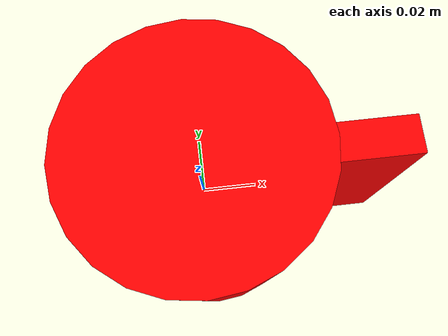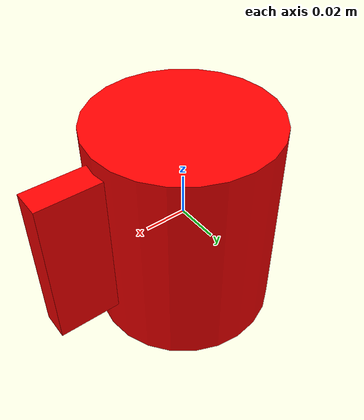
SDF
<?xml version="1.0" ?>
<!-- |    This document was autogenerated by xacro from models/mug/corelle_livingware_11oz_mug_red.sdf.xacro | -->
<!-- |    EDITING THIS FILE BY HAND IS NOT RECOMMENDED                                 | -->
<sdf version="1.6" xmlns:xacro="http://www.ros.org/wiki/xacro">
  <model name="cylinder">
    <!--
    Axes:
      +X - pointing toward the handle.
      +Z - pointing toward the top of the cup.
    Origin:
      (0, 0, 0) at the center (while ignoring the handle) of the mug.
    -->
    <link name="base_link">
      <pose>0 0 0 0 0 0</pose>
      <inertial>
        <pose>0.0042 0.00000 -0.0059 0 0 0</pose>
        <mass>0.321</mass>
        <inertia>
          <ixx> 0.000446</ixx>
          <ixy> 0.000000</ixy>
          <ixz>-0.000016</ixz>
          <iyy> 0.000515</iyy>
          <iyz> 0.000000</iyz>
          <izz> 0.000415</izz>
        </inertia>
      </inertial>
      <visual name="visual_cylinder">
        <pose>0 0 0 0 0 0</pose>
        <geometry>
          <cylinder>
            <radius>0.043</radius>
            <length>0.099</length>
          </cylinder>
        </geometry>
        <material>
          <diffuse>1.0 0 0 1.0</diffuse>
        </material>
      </visual>
      <visual name="visual_box">
        <pose>0.053 0 0.006 0 0 0</pose>
        <geometry>
          <box>
            <size>0.036 0.013 0.072</size>
          </box>
        </geometry>
        <material>
          <diffuse>1.0 0 0 1.0</diffuse>
        </material>
      </visual>

      <collision name="collision_cylinder">
        <pose>0 0 0 0 0 0</pose>
        <geometry>
          <cylinder>
            <radius>0.043</radius>
            <length>0.099</length>
          </cylinder>
        </geometry>
      </collision>
      <collision name="collision_box">
        <pose>0.053 0 0.006 0 0 0</pose>
        <geometry>
          <box>
            <size>0.036 0.013 0.072</size>
          </box>
        </geometry>
      </collision>
      <!-- Add spheres to bottom and top rims to avoid surface/surface
      collision (which causes jumping). -->
      <collision name="bottom_sphere_collision_0">
        <pose>0.043 0 -0.0495 0 0 0</pose>
        <geometry>
          <sphere>
            <radius>2e-3</radius>
          </sphere>
        </geometry>
      </collision>
      <collision name="bottom_sphere_collision_1">
        <pose>0 0.043 -0.0495 0 0 0</pose>
        <geometry>
          <sphere>
            <radius>2e-3</radius>
          </sphere>
        </geometry>
      </collision>
      <collision name="bottom_sphere_collision_2">
        <pose>-0.043 0 -0.0495 0 0 0</pose>
        <geometry>
          <sphere>
            <radius>2e-3</radius>
          </sphere>
        </geometry>
      </collision>
      <collision name="bottom_sphere_collision_3">
        <pose>0 -0.043 -0.0495 0 0 0</pose>
        <geometry>
          <sphere>
            <radius>2e-3</radius>
          </sphere>
        </geometry>
      </collision>
      <collision name="bottom_sphere_collision_4">
        <pose>.02 0.038 -0.0495 0 0 0</pose>
        <geometry>
          <sphere>
            <radius>2e-3</radius>
          </sphere>
        </geometry>
      </collision>
      <collision name="top_sphere_collision_0">
        <pose>0.043 0 0.0495 0 0 0</pose>
        <geometry>
          <sphere>
            <radius>2e-3</radius>
          </sphere>
        </geometry>
      </collision>
      <collision name="top_sphere_collision_1">
        <pose>0 0.043 0.0495 0 0 0</pose>
        <geometry>
          <sphere>
            <radius>2e-3</radius>
          </sphere>
        </geometry>
      </collision>
      <collision name="top_sphere_collision_2">
        <pose>-0.043 0 0.0495 0 0 0</pose>
        <geometry>
          <sphere>
            <radius>2e-3</radius>
          </sphere>
        </geometry>
      </collision>
      <collision name="top_sphere_collision_3">
        <pose>0 -0.043 0.0495 0 0 0</pose>
        <geometry>
          <sphere>
            <radius>2e-3</radius>
          </sphere>
        </geometry>
      </collision>
      <collision name="top_sphere_collision_4">
        <pose>.02 0.038 0.0495 0 0 0</pose>
        <geometry>
          <sphere>
            <radius>2e-3</radius>
          </sphere>
        </geometry>
      </collision>
      <collision name="top_handle_sphere_collision_0">
        <pose>0.071 0.006 0.042 0 0 0</pose>
        <geometry>
          <sphere>
            <radius>2e-3</radius>
          </sphere>
        </geometry>
      </collision>
      <collision name="top_handle_sphere_collision_1">
        <pose>0.071 -0.006 0.042 0 0 0</pose>
        <geometry>
          <sphere>
            <radius>2e-3</radius>
          </sphere>
        </geometry>
      </collision>
      <collision name="bottom_handle_sphere_collision_0">
        <pose>0.071 0.006 -0.03 0 0 0</pose>
        <geometry>
          <sphere>
            <radius>2e-3</radius>
          </sphere>
        </geometry>
      </collision>
      <collision name="bottom_handle_sphere_collision_1">
        <pose>0.071 -0.006 -0.03 0 0 0</pose>
        <geometry>
          <sphere>
            <radius>2e-3</radius>
          </sphere>
        </geometry>
      </collision>
    </link>
    <frame name="bottom">
      <pose>0 0 -0.05 0 0 0</pose>
      <link>corelle_livingware_11oz_mug_red</link>
    </frame>
    <frame name="center">
      <pose>0 0 0 0 0 0</pose>
      <link>corelle_livingware_11oz_mug_red</link>
    </frame>
  </model>
</sdf>
